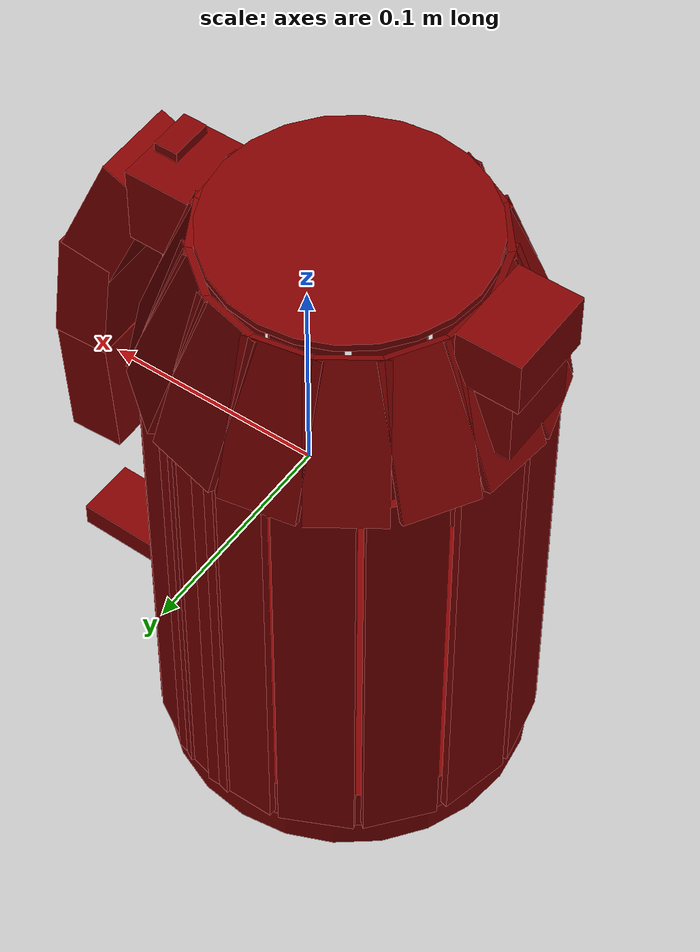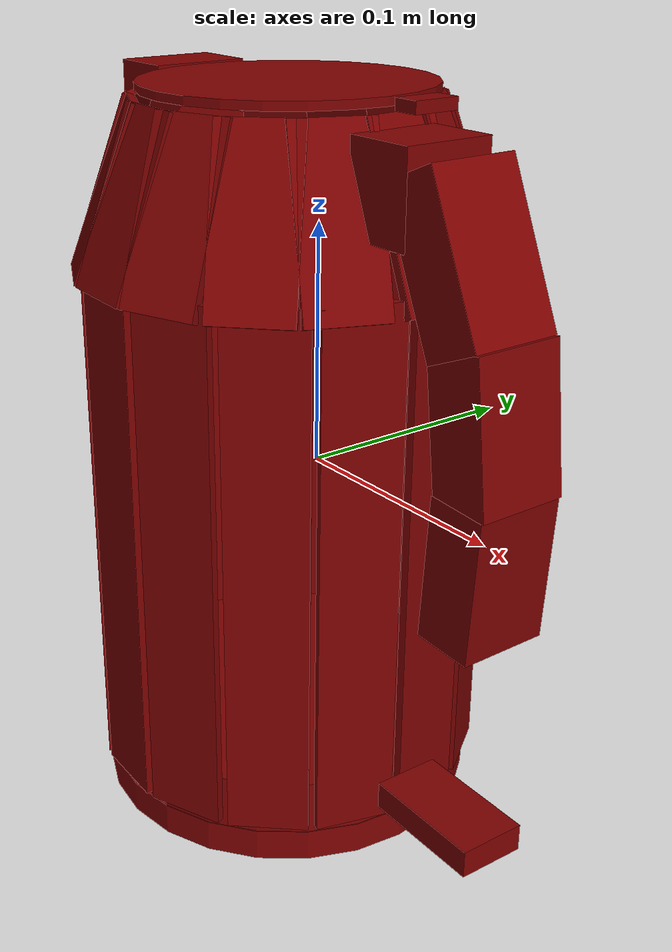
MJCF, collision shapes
<?xml version='1.0' encoding='UTF-8'?>
<mujoco model="model">
  <option timestep="0.002" gravity="0.0 0.0 -9.81"/>
  <compiler angle="radian"/>
  <asset>
    <mesh file="visuals/button_lid.obj" name="button_lid_vis"/>
    <mesh file="visuals/Body001.obj" name="Body001_vis"/>
    <mesh file="visuals/kettle_main.obj" name="kettle_main_vis"/>
    <mesh file="visuals/lid.obj" name="lid_vis"/>
    <mesh file="visuals/switch.obj" name="switch_vis"/>
    <texture file="visuals/T_BC001.png" name="Body001_material" type="2d"/>
    <material name="Body001_material" rgba="1 1 1 1.0" texture="Body001_material" shininess="0.2512328028678894" specular="0.3103448502657381"/>
    <texture file="visuals/T_BC001.png" name="kettle_main_material" type="2d"/>
    <material name="kettle_main_material" rgba="1 1 1 1.0" texture="kettle_main_material" shininess="0.2512328028678894" specular="0.3103448502657381"/>
    <texture file="visuals/T_BC001.png" name="button_lid_material" type="2d"/>
    <material name="button_lid_material" rgba="1 1 1 1.0" texture="button_lid_material" shininess="0.2512328028678894" specular="0.3103448502657381"/>
    <texture file="visuals/T_BC001.png" name="lid_material" type="2d"/>
    <material name="lid_material" rgba="1 1 1 1.0" texture="lid_material" shininess="0.2512328028678894" specular="0.3103448502657381"/>
    <texture file="visuals/T_BC001.png" name="switch_material" type="2d"/>
    <material name="switch_material" rgba="1 1 1 1.0" texture="switch_material" shininess="0.2512328028678894" specular="0.3103448502657381"/>
  </asset>
  <default>
    <default class="visual">
      <geom conaffinity="0" contype="0" group="1" type="mesh"/>
    </default>
    <default class="collision">
      <geom group="0" rgba="0.5 0 0 0.5" density="1.0" solref="0.004 1" solimp="0.998 0.998 0.001"/>
    </default>
    <default class="spawn">
      <geom group="0" rgba="1 1 1 0.5" contype="0" conaffinity="0"/>
      <site group="0" rgba="1 1 1 0.5"/>
    </default>
    <default class="region">
      <geom group="1" conaffinity="0" contype="0" rgba="0 1 0 0" mass="0"/>
    </default>
  </default>
  <worldbody>
    <body>
      <body name="object">
        <geom mesh="Body001_vis" type="mesh" solimp="0.998 0.998 0.001" solref="0.001 1" friction="0.95 0.3 0.1" class="visual" material="Body001_material"/>
        <geom type="cylinder" pos="-0.02051083 -0.00066248 -0.14713949" size="0.08153709024190903 0.006818325724452734" quat="0.7096360921859741 0.0 0.0 -0.7045683860778809" class="collision"/>
        <body name="kettle_main">
          <geom mesh="kettle_main_vis" type="mesh" solimp="0.998 0.998 0.001" solref="0.001 1" friction="0.95 0.3 0.1" class="visual" material="kettle_main_material"/>
          <geom type="box" pos="-0.02119284 0.08089872 -0.02622788" size="0.016611983999609947 0.0018791129114106297 0.11082148551940918" quat="1.0 0.0 0.0 0.0" class="collision"/>
          <geom type="box" pos="-0.05549761 0.07300466 -0.02622788" size="0.0017601862782612443 0.016599789261817932 0.11082148551940918" quat="0.5340399742126465 0.0 0.0 0.8454592227935791" class="collision"/>
          <geom type="box" pos="-0.08346368 0.05106464 -0.02622789" size="0.001760187093168497 0.01659979671239853 0.11082148551940918" quat="0.33608707785606384 0.0 0.0 0.9418309330940247" class="collision"/>
          <geom type="box" pos="-0.09957603 0.01848541 -0.02622788" size="0.0017601868603378534 0.01659979484975338 0.11082148551940918" quat="0.1168261244893074 0.0 0.0 0.993152379989624" class="collision"/>
          <geom type="box" pos="-0.10011023 -0.01671189 -0.02622788" size="0.001760187209583819 0.01659979857504368 0.11082148551940918" quat="0.10117648541927338 0.0 -0.0 -0.9948685169219971" class="collision"/>
          <geom type="box" pos="-0.08549049 -0.04911138 -0.02622789" size="0.001760187093168497 0.01659979671239853 0.11082148551940918" quat="0.3164283037185669 0.0 -0.0 -0.9486164450645447" class="collision"/>
          <geom type="box" pos="-0.05785063 -0.07246953 -0.02622788" size="0.001760187209583819 0.01659979857504368 0.11082148551940918" quat="0.5198121666908264 0.0 0.0 -0.8542805910110474" class="collision"/>
          <geom type="box" pos="-0.02381910 -0.08146890 -0.02622788" size="0.001760186511091888 0.01659979112446308 0.11082148551940918" quat="0.6925902962684631 0.0 0.0 -0.7213311791419983" class="collision"/>
          <geom type="box" pos="0.01114851 -0.07508663 -0.02622789" size="0.0017601868603378534 0.01659979484975338 0.11082148551940918" quat="0.8336514830589294 0.0 0.0 -0.5522909164428711" class="collision"/>
          <geom type="box" pos="0.04026859 -0.05412740 -0.02622788" size="0.001760187093168497 0.01659979671239853 0.11082148551940918" quat="0.9350507855415344 0.0 -0.0 -0.3545137643814087" class="collision"/>
          <geom type="box" pos="0.05732324 -0.02333334 -0.02622788" size="0.0017601866275072098 0.01659979298710823 0.11082148551940918" quat="0.989656925201416 0.0 0.0 -0.14345452189445496" class="collision"/>
          <geom type="box" pos="0.05969313 0.01213283 -0.02622789" size="0.0017601866275072098 0.01659979298710823 0.11082148551940918" quat="0.9970629215240479 0.0 0.0 0.07658646255731583" class="collision"/>
          <geom type="box" pos="0.04630377 0.04578029 -0.02622788" size="0.001760187093168497 0.01659979671239853 0.11082148551940918" quat="0.9548942446708679 0.0 0.0 0.29694607853889465" class="collision"/>
          <geom type="box" pos="0.02051859 0.06974396 -0.02622788" size="0.001760187209583819 0.01659979857504368 0.11082148551940918" quat="0.8678510189056396 0.0 0.0 0.49682456254959106" class="collision"/>
          <geom type="box" pos="-0.00009407 0.07827904 -0.02622789" size="0.0017601876752451062 0.016599802300333977 0.11082148551940918" quat="0.7913896441459656 0.0 0.0 0.6113120317459106" class="collision"/>
          <geom class="collision" type="box" pos="0.10180058 0.00016938 -0.00769159" size="0.019023746252059937 0.012742114253342152 0.02920333854854107" quat="0.704201877117157 0.02272380143404007 0.02288724295794964 0.7092669010162354" name="handle_3"/>
          <geom class="collision" type="box" pos="0.10123858 0.00016536 0.04829847" size="0.019023746252059937 0.01274210587143898 0.029203318059444427" quat="0.7033147811889648 -0.04201327636837959 -0.04231545701622963 0.7083732485771179" name="handle_main"/>
          <geom class="collision" type="box" pos="0.08476955 0.00004732 0.10311072" size="0.019023746252059937 0.012742115184664726 0.03197980672121048" quat="0.689780056476593 -0.1435977965593338 -0.14463050663471222 0.6947410702705383" name="handle_2"/>
          <geom class="collision" type="box" pos="0.05753811 -0.00014784 0.12295284" size="0.01503242738544941 0.019130021333694458 0.01822943240404129" quat="1.0 0.0 0.0 0.0" name="handle_1"/>
          <geom type="box" pos="-0.09513680 -0.00068817 0.11044297" size="0.01204189844429493 0.019108587875962257 0.01822943240404129" quat="1.0 0.0 0.0 0.0" class="collision"/>
          <geom type="box" pos="-0.09710098 0.00059803 0.13884842" size="0.01452756579965353 0.021035488694906235 0.012981558218598366" quat="1.0 0.0 0.0 0.0" class="collision"/>
          <geom type="box" pos="-0.02343861 -0.07211348 0.11190705" size="0.001760187093168497 0.016599802300333977 0.03618008270859718" quat="0.6818374991416931 -0.1266142874956131 -0.1215694397687912 -0.7101318836212158" class="collision"/>
          <geom type="box" pos="-0.05193244 -0.06505734 0.11190705" size="0.001760187093168497 0.01659979671239853 0.03618008270859718" quat="0.5235362648963928 -0.1486506164073944 -0.0933447927236557 -0.8337262868881226" class="collision"/>
          <geom type="box" pos="-0.07593630 -0.04648540 0.11190705" size="0.001760187093168497 0.01659979671239853 0.03618008270859718" quat="0.33695188164711 -0.16492722928524017 -0.06007745489478111 -0.9250152111053467" class="collision"/>
          <geom type="box" pos="-0.08981210 -0.02103340 0.11190705" size="0.001760187093168497 0.01659979671239853 0.03618008270859718" quat="0.14473450183868408 -0.17362122237682343 -0.025805698707699776 -0.9737769961357117" class="collision"/>
          <geom type="box" pos="-0.09253807 0.00819428 0.11190705" size="0.001760187093168497 0.01659979857504368 0.03618008270859718" quat="0.05589413642883301 0.17524529993534088 -0.009965731762349606 0.9828863739967346" class="collision"/>
          <geom type="box" pos="-0.08291191 0.03697691 0.11190705" size="0.001760187093168497 0.01659979671239853 0.03618008270859718" quat="0.26087746024131775 0.16925351321697235 -0.046513576060533524 0.9492800831794739" class="collision"/>
          <geom type="box" pos="-0.06152837 0.05982844 0.11190705" size="0.001760187093168497 0.01659979671239853 0.03618008270859718" quat="0.4600856602191925 0.15518072247505188 -0.08203176409006119 0.8703510165214539" class="collision"/>
          <geom type="box" pos="-0.03444702 0.07115486 0.11190705" size="0.001760187093168497 0.016599800437688828 0.03618008270859718" quat="0.6271396279335022 0.13530424237251282 -0.11181693524122238 0.75887131690979" class="collision"/>
          <geom type="box" pos="-0.00410319 0.07055947 0.11190705" size="0.001760187093168497 0.01659979484975338 0.03618008270859718" quat="0.772404670715332 0.10883127897977829 -0.13771727681159973 0.6103939414024353" class="collision"/>
          <geom type="box" pos="0.02378925 0.05720762 0.11190705" size="0.001760187093168497 0.01659979671239853 0.03618008270859718" quat="0.8850404620170593 0.07687317579984665 -0.15779981017112732 0.431153267621994" class="collision"/>
          <geom type="box" pos="0.04280157 0.03484204 0.11190705" size="0.001760187093168497 0.01659979671239853 0.03618008270859718" quat="0.9541215896606445 0.04324999079108238 -0.17011673748493195 0.24257312715053558" class="collision"/>
          <geom type="box" pos="0.05144489 0.00574915 0.11190705" size="0.001760187093168497 0.016599802300333977 0.03618008270859718" quat="0.9837794899940491 0.006593675818294287 -0.17540474236011505 0.03698144853115082" class="collision"/>
          <geom type="box" pos="0.04655288 -0.02654208 0.11190705" size="0.001760187093168497 0.01659979671239853 0.03618008270859718" quat="0.9667247533798218 -0.033180925995111465 -0.17236389219760895 -0.1860993504524231" class="collision"/>
          <geom type="box" pos="0.03040549 -0.05105634 0.11190704" size="0.001760187093168497 0.01659979671239853 0.03618008270859718" quat="0.9088420271873474 -0.06746967881917953 -0.16204357147216797 -0.3784123659133911" class="collision"/>
          <geom type="box" pos="0.00489654 -0.06750004 0.11190705" size="0.001760187093168497 0.01659979671239853 0.03618008270859718" quat="0.8092139363288879 -0.09996749460697174 -0.14428018033504486 -0.5606804490089417" class="collision"/>
          <geom type="cylinder" pos="-0.02051083 -0.00066248 -0.12834641" size="0.08153709024190903 0.01166202686727047" quat="0.7096360921859741 0.0 0.0 -0.7045683860778809" class="collision"/>
          <body name="button_lid">
            <joint axis="0.0 0.0 -1.0" pos="0.05929521 0.00015735 0.15163685" limited="true" name="button_lid_joint" range="0.0 0.0015" type="slide" damping="1" frictionloss="1" armature=".01" stiffness="0.05" springref="-1"/>
            <geom mesh="button_lid_vis" type="mesh" solimp="0.998 0.998 0.001" solref="0.001 1" friction="0.95 0.3 0.1" class="visual" material="button_lid_material"/>
            <geom class="collision" type="box" pos="0.05941907 0.00002301 0.15163687" size="0.005403214134275913 0.009586322121322155 0.002321062609553337" quat="1.0 0.0 0.0 0.0" name="button_lid_main"/>
          </body>
          <body name="lid">
            <joint axis="0.0 1.0 0.0" pos="0.03943844 0.00033280 0.15140919" limited="true" name="lid_joint" range="0.0 1.5707963267948966" type="hinge" damping="1" frictionloss="0.1" armature=".01" stiffness="0.05" springref="-6"/>
            <geom mesh="lid_vis" type="mesh" solimp="0.998 0.998 0.001" solref="0.001 1" friction="0.95 0.3 0.1" class="visual" material="lid_material"/>
            <geom class="collision" type="cylinder" pos="-0.02051725 0.00023516 0.14987485" size="0.05922703072428703 0.0017434974433854222" quat="0.7045683860778809 0.0 0.0 0.7096360921859741" name="lid_main"/>
          </body>
          <body name="switch">
            <joint axis="0.0 1.0 0.0" pos="0.06086916 -0.00502506 -0.12068757" limited="true" name="switch_joint" range="0.0 0.2617993877991494" type="hinge" damping="1" frictionloss="1" armature=".01" stiffness="0.05" springref="-1"/>
            <geom mesh="switch_vis" type="mesh" solimp="0.998 0.998 0.001" solref="0.001 1" friction="0.95 0.3 0.1" class="visual" material="switch_material"/>
            <geom class="collision" type="box" pos="0.09444775 -0.00527399 -0.12042294" size="0.02591058239340782 0.01422601006925106 0.0057274047285318375" quat="0.9999457001686096 0.0 -0.0 -0.010422134771943092" name="switch_main"/>
          </body>
        </body>
        <geom class="region" name="reg_main" type="box" pos="-0.0024025049999999992 0.0 -4.999999997368221e-09" size="0.120724305 0.08472127 0.154957905"/>
      </body>
    </body>
  </worldbody>
  <actuator>
    <motor name="button_lid_joint_actuator" joint="button_lid_joint" gear="0.5"/>
    <motor name="lid_joint_actuator" joint="lid_joint" gear="0.5"/>
    <motor name="switch_joint_actuator" joint="switch_joint" gear="0.5"/>
  </actuator>
</mujoco>
